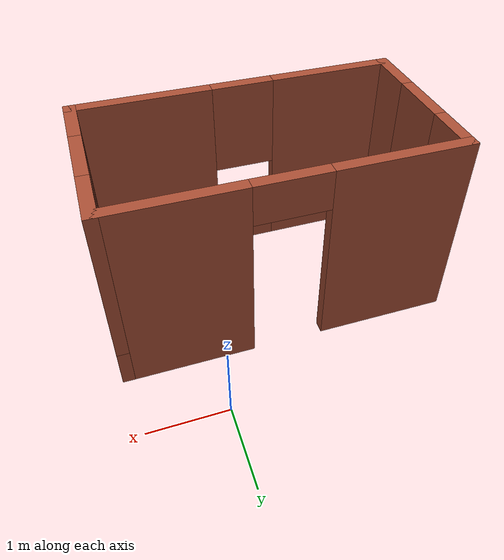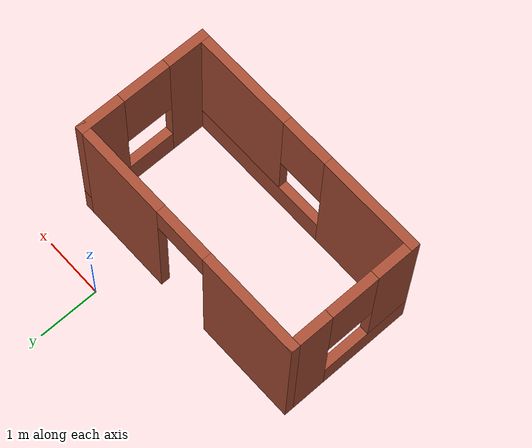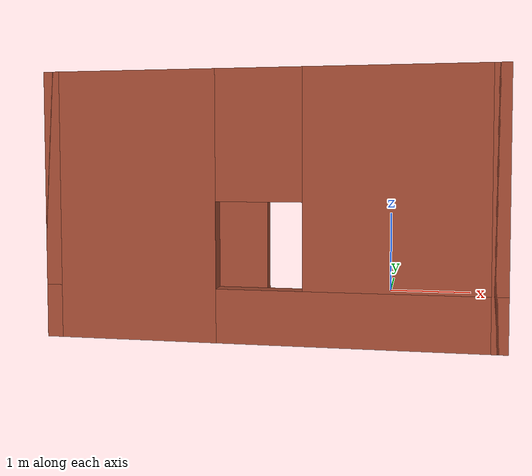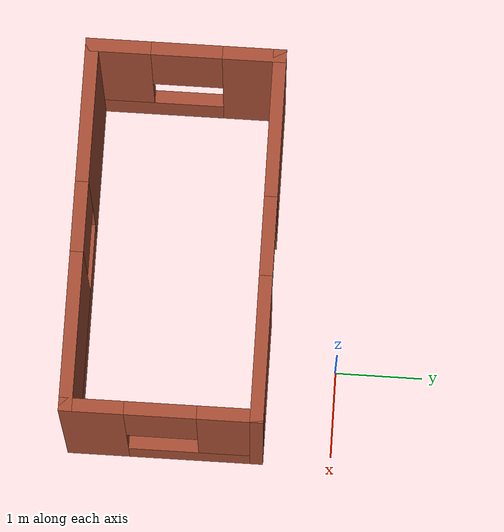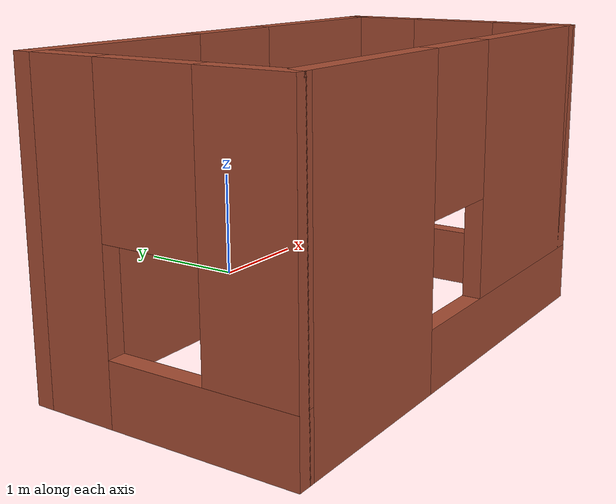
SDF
<?xml version='1.0'?>
<sdf version='1.7'>
  <model name='bricks'>
    <pose>-1 -1.5125 0 0 -0 0</pose>
    <link name='Wall_0'>
      <pose>-2.05 -0.3875 0 0 -0 -1.5708</pose>
      <visual name='Wall_0_Visual_0'>
        <pose>-0.7675 0 1.25 0 -0 0</pose>
        <geometry>
          <box>
            <size>0.715 0.15 2.5</size>
          </box>
        </geometry>
        <material>
          <script>
            <uri>file://media/materials/scripts/gazebo.material</uri>
            <name>Gazebo/Bricks</name>
          </script>
          <ambient>1 1 1 1</ambient>
        </material>
        <meta>
          <layer>0</layer>
        </meta>
      </visual>
      <collision name='Wall_0_Collision_0'>
        <geometry>
          <box>
            <size>0.715 0.15 2.5</size>
          </box>
        </geometry>
        <pose>-0.7675 0 1.25 0 -0 0</pose>
      </collision>
      <visual name='Wall_0_Visual_1'>
        <pose>0.3575 0 0.25 0 -0 0</pose>
        <geometry>
          <box>
            <size>1.535 0.15 0.5</size>
          </box>
        </geometry>
        <material>
          <script>
            <uri>file://media/materials/scripts/gazebo.material</uri>
            <name>Gazebo/Bricks</name>
          </script>
          <ambient>1 1 1 1</ambient>
        </material>
        <meta>
          <layer>0</layer>
        </meta>
      </visual>
      <collision name='Wall_0_Collision_1'>
        <geometry>
          <box>
            <size>1.535 0.15 0.5</size>
          </box>
        </geometry>
        <pose>0.3575 0 0.25 0 -0 0</pose>
      </collision>
      <visual name='Wall_0_Visual_2'>
        <pose>0.7575 0 1.5 0 -0 0</pose>
        <geometry>
          <box>
            <size>0.735 0.15 2</size>
          </box>
        </geometry>
        <material>
          <script>
            <uri>file://media/materials/scripts/gazebo.material</uri>
            <name>Gazebo/Bricks</name>
          </script>
          <ambient>1 1 1 1</ambient>
        </material>
        <meta>
          <layer>0</layer>
        </meta>
      </visual>
      <collision name='Wall_0_Collision_2'>
        <geometry>
          <box>
            <size>0.735 0.15 2</size>
          </box>
        </geometry>
        <pose>0.7575 0 1.5 0 -0 0</pose>
      </collision>
      <visual name='Wall_0_Visual_3'>
        <pose>-0.01 0 1.9 0 -0 0</pose>
        <geometry>
          <box>
            <size>0.8 0.15 1.2</size>
          </box>
        </geometry>
        <material>
          <script>
            <uri>file://media/materials/scripts/gazebo.material</uri>
            <name>Gazebo/Bricks</name>
          </script>
          <ambient>1 1 1 1</ambient>
        </material>
        <meta>
          <layer>0</layer>
        </meta>
      </visual>
      <collision name='Wall_0_Collision_3'>
        <geometry>
          <box>
            <size>0.8 0.15 1.2</size>
          </box>
        </geometry>
        <pose>-0.01 0 1.9 0 -0 0</pose>
      </collision>
    </link>
    <link name='Wall_1'>
      <pose>-0 -1.4375 0 0 -0 0</pose>
      <visual name='Wall_1_Visual_0'>
        <pose>-1.2975 0 1.25 0 -0 0</pose>
        <geometry>
          <box>
            <size>1.655 0.15 2.5</size>
          </box>
        </geometry>
        <material>
          <script>
            <uri>file://media/materials/scripts/gazebo.material</uri>
            <name>Gazebo/Bricks</name>
          </script>
          <ambient>1 1 1 1</ambient>
        </material>
        <meta>
          <layer>0</layer>
        </meta>
      </visual>
      <collision name='Wall_1_Collision_0'>
        <geometry>
          <box>
            <size>1.655 0.15 2.5</size>
          </box>
        </geometry>
        <pose>-1.2975 0 1.25 0 -0 0</pose>
      </collision>
      <visual name='Wall_1_Visual_1'>
        <pose>0.8275 0 0.25 0 -0 0</pose>
        <geometry>
          <box>
            <size>2.595 0.15 0.5</size>
          </box>
        </geometry>
        <material>
          <script>
            <uri>file://media/materials/scripts/gazebo.material</uri>
            <name>Gazebo/Bricks</name>
          </script>
          <ambient>1 1 1 1</ambient>
        </material>
        <meta>
          <layer>0</layer>
        </meta>
      </visual>
      <collision name='Wall_1_Collision_1'>
        <geometry>
          <box>
            <size>2.595 0.15 0.5</size>
          </box>
        </geometry>
        <pose>0.8275 0 0.25 0 -0 0</pose>
      </collision>
      <visual name='Wall_1_Visual_2'>
        <pose>1.2275 0 1.5 0 -0 0</pose>
        <geometry>
          <box>
            <size>1.795 0.15 2</size>
          </box>
        </geometry>
        <material>
          <script>
            <uri>file://media/materials/scripts/gazebo.material</uri>
            <name>Gazebo/Bricks</name>
          </script>
          <ambient>1 1 1 1</ambient>
        </material>
        <meta>
          <layer>0</layer>
        </meta>
      </visual>
      <collision name='Wall_1_Collision_2'>
        <geometry>
          <box>
            <size>1.795 0.15 2</size>
          </box>
        </geometry>
        <pose>1.2275 0 1.5 0 -0 0</pose>
      </collision>
      <visual name='Wall_1_Visual_3'>
        <pose>-0.07 0 1.9 0 -0 0</pose>
        <geometry>
          <box>
            <size>0.8 0.15 1.2</size>
          </box>
        </geometry>
        <material>
          <script>
            <uri>file://media/materials/scripts/gazebo.material</uri>
            <name>Gazebo/Bricks</name>
          </script>
          <ambient>1 1 1 1</ambient>
        </material>
        <meta>
          <layer>0</layer>
        </meta>
      </visual>
      <collision name='Wall_1_Collision_3'>
        <geometry>
          <box>
            <size>0.8 0.15 1.2</size>
          </box>
        </geometry>
        <pose>-0.07 0 1.9 0 -0 0</pose>
      </collision>
    </link>
    <link name='Wall_2'>
      <pose>2.05 -0.3875 0 0 -0 1.5708</pose>
      <visual name='Wall_2_Visual_0'>
        <pose>-0.7675 0 1.25 0 -0 0</pose>
        <geometry>
          <box>
            <size>0.715 0.15 2.5</size>
          </box>
        </geometry>
        <material>
          <script>
            <uri>file://media/materials/scripts/gazebo.material</uri>
            <name>Gazebo/Bricks</name>
          </script>
          <ambient>1 1 1 1</ambient>
        </material>
        <meta>
          <layer>0</layer>
        </meta>
      </visual>
      <collision name='Wall_2_Collision_0'>
        <geometry>
          <box>
            <size>0.715 0.15 2.5</size>
          </box>
        </geometry>
        <pose>-0.7675 0 1.25 0 -0 0</pose>
      </collision>
      <visual name='Wall_2_Visual_1'>
        <pose>0.3575 0 0.25 0 -0 0</pose>
        <geometry>
          <box>
            <size>1.535 0.15 0.5</size>
          </box>
        </geometry>
        <material>
          <script>
            <uri>file://media/materials/scripts/gazebo.material</uri>
            <name>Gazebo/Bricks</name>
          </script>
          <ambient>1 1 1 1</ambient>
        </material>
        <meta>
          <layer>0</layer>
        </meta>
      </visual>
      <collision name='Wall_2_Collision_1'>
        <geometry>
          <box>
            <size>1.535 0.15 0.5</size>
          </box>
        </geometry>
        <pose>0.3575 0 0.25 0 -0 0</pose>
      </collision>
      <visual name='Wall_2_Visual_2'>
        <pose>0.7575 0 1.5 0 -0 0</pose>
        <geometry>
          <box>
            <size>0.735 0.15 2</size>
          </box>
        </geometry>
        <material>
          <script>
            <uri>file://media/materials/scripts/gazebo.material</uri>
            <name>Gazebo/Bricks</name>
          </script>
          <ambient>1 1 1 1</ambient>
        </material>
        <meta>
          <layer>0</layer>
        </meta>
      </visual>
      <collision name='Wall_2_Collision_2'>
        <geometry>
          <box>
            <size>0.735 0.15 2</size>
          </box>
        </geometry>
        <pose>0.7575 0 1.5 0 -0 0</pose>
      </collision>
      <visual name='Wall_2_Visual_3'>
        <pose>-0.01 0 1.9 0 -0 0</pose>
        <geometry>
          <box>
            <size>0.8 0.15 1.2</size>
          </box>
        </geometry>
        <material>
          <script>
            <uri>file://media/materials/scripts/gazebo.material</uri>
            <name>Gazebo/Bricks</name>
          </script>
          <ambient>1 1 1 1</ambient>
        </material>
        <meta>
          <layer>0</layer>
        </meta>
      </visual>
      <collision name='Wall_2_Collision_3'>
        <geometry>
          <box>
            <size>0.8 0.15 1.2</size>
          </box>
        </geometry>
        <pose>-0.01 0 1.9 0 -0 0</pose>
      </collision>
    </link>
    <link name='Wall_3'>
      <pose>-0 0.6625 0 0 -0 3.14159</pose>
      <visual name='Wall_3_Visual_0'>
        <pose>-1.2975 0 1.25 0 -0 0</pose>
        <geometry>
          <box>
            <size>1.655 0.15 2.5</size>
          </box>
        </geometry>
        <material>
          <script>
            <uri>file://media/materials/scripts/gazebo.material</uri>
            <name>Gazebo/Bricks</name>
          </script>
          <ambient>1 1 1 1</ambient>
        </material>
        <meta>
          <layer>0</layer>
        </meta>
      </visual>
      <collision name='Wall_3_Collision_0'>
        <geometry>
          <box>
            <size>1.655 0.15 2.5</size>
          </box>
        </geometry>
        <pose>-1.2975 0 1.25 0 -0 0</pose>
      </collision>
      <visual name='Wall_3_Visual_1'>
        <pose>1.2775 0 1.25 0 -0 0</pose>
        <geometry>
          <box>
            <size>1.695 0.15 2.5</size>
          </box>
        </geometry>
        <material>
          <script>
            <uri>file://media/materials/scripts/gazebo.material</uri>
            <name>Gazebo/Bricks</name>
          </script>
          <ambient>1 1 1 1</ambient>
        </material>
        <meta>
          <layer>0</layer>
        </meta>
      </visual>
      <collision name='Wall_3_Collision_1'>
        <geometry>
          <box>
            <size>1.695 0.15 2.5</size>
          </box>
        </geometry>
        <pose>1.2775 0 1.25 0 -0 0</pose>
      </collision>
      <visual name='Wall_3_Visual_2'>
        <pose>-0.02 0 2.25 0 -0 0</pose>
        <geometry>
          <box>
            <size>0.9 0.15 0.5</size>
          </box>
        </geometry>
        <material>
          <script>
            <uri>file://media/materials/scripts/gazebo.material</uri>
            <name>Gazebo/Bricks</name>
          </script>
          <ambient>1 1 1 1</ambient>
        </material>
        <meta>
          <layer>0</layer>
        </meta>
      </visual>
      <collision name='Wall_3_Collision_2'>
        <geometry>
          <box>
            <size>0.9 0.15 0.5</size>
          </box>
        </geometry>
        <pose>-0.02 0 2.25 0 -0 0</pose>
      </collision>
    </link>
    <static>1</static>
  </model>
</sdf>
